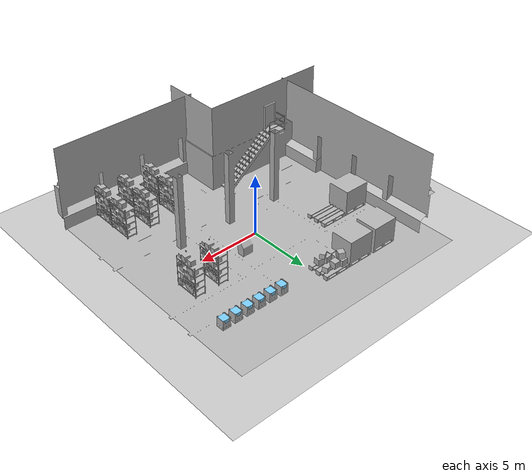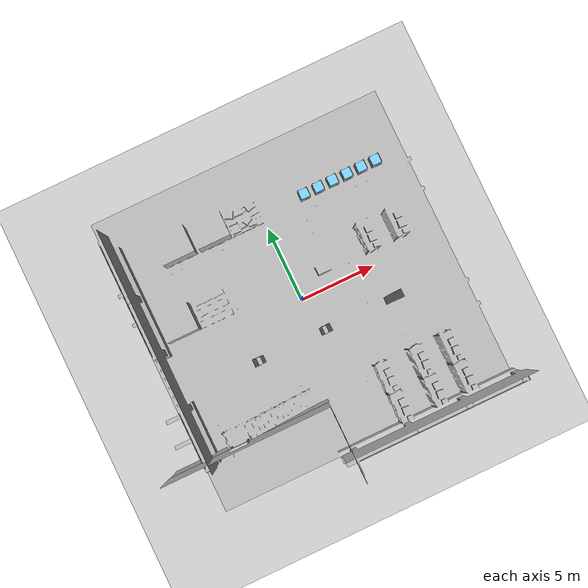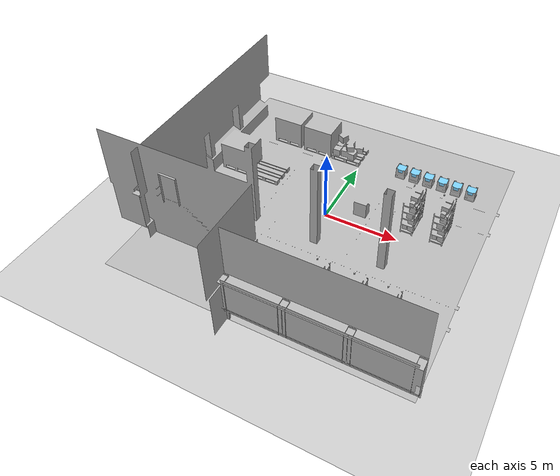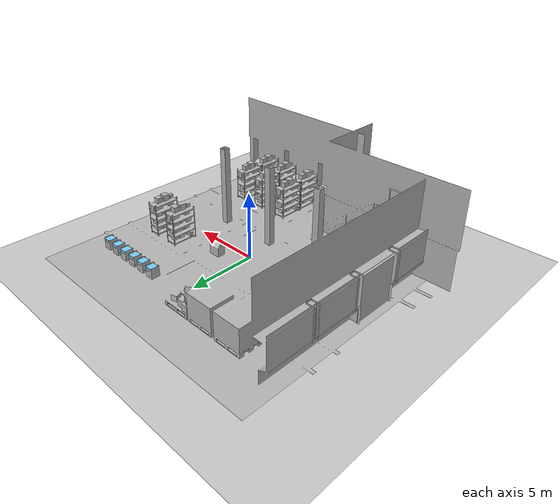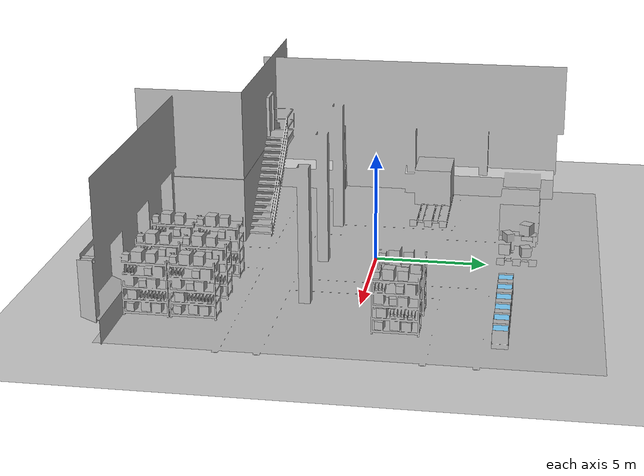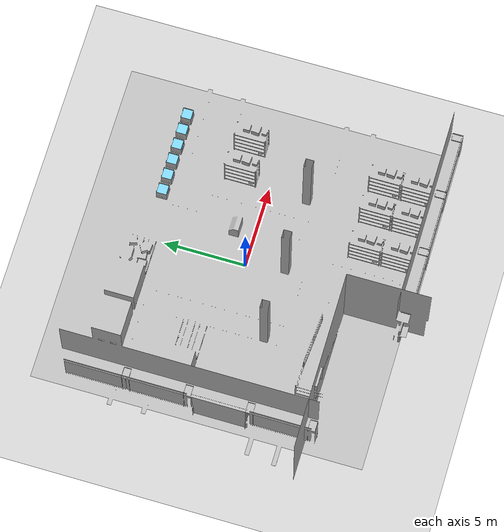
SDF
<sdf version="1.6">
 <world name="default">
  <light name="sun" type="directional">
   <pose>0 0 10 0 -0 0</pose>
   <diffuse>0.8 0.8 0.8 1</diffuse>
   <specular>0.2 0.2 0.2 1</specular>
   <attenuation>
    <range>1000</range>
    <constant>0.9</constant>
    <linear>0.01</linear>
    <quadratic>0.001</quadratic>
   </attenuation>
   <direction>-0.5 0.1 -0.9</direction>
  </light>
  <model name="ground_plane">
   <static>1</static>
   <link name="link">
    <collision name="collision">
     <geometry><plane><normal>0 0 1</normal><size>100 100</size></plane></geometry>
     <surface><friction><ode><mu>100</mu><mu2>50</mu2></ode></friction></surface>
    </collision>
    <visual name="visual">
     <cast_shadows>0</cast_shadows>
     <geometry><plane><normal>0 0 1</normal><size>100 100</size></plane></geometry>
     <material>
      <script><uri>file://media/materials/scripts/gazebo.material</uri><name>Gazebo/Grey</name></script>
     </material>
    </visual>
   </link>
  </model>
  <gravity>0 0 -9.8</gravity>
  <magnetic_field>6e-06 2.3e-05 -4.2e-05</magnetic_field>
  <atmosphere type="adiabatic"/>
  <physics name="default_physics" default="0" type="ode">
   <max_step_size>0.001</max_step_size>
   <real_time_factor>1</real_time_factor>
   <real_time_update_rate>1000</real_time_update_rate>
  </physics>
  <scene><ambient>0.4 0.4 0.4 1</ambient><background>0.7 0.7 0.7 1</background><shadows>1</shadows></scene>
  <audio><device>default</device></audio>
  <spherical_coordinates>
   <surface_model>EARTH_WGS84</surface_model>
   <latitude_deg>0</latitude_deg>
   <longitude_deg>0</longitude_deg>
   <elevation>0</elevation>
   <heading_deg>0</heading_deg>
  </spherical_coordinates>
  <model name="workcell">
   <static>1</static>
   <link name="link">
    <visual name="visual"><geometry><mesh><uri>model://workcell/meshes/mesh.dae</uri></mesh></geometry></visual>
    <collision name="floor">
     <pose>0 0 -0.1 0 -0 0</pose>
     <geometry><box><size>20.1026 20.1026 0.2</size></box></geometry>
     <surface><contact><ode><max_vel>0</max_vel><min_depth>0.001</min_depth></ode></contact></surface>
    </collision>
    <collision name="wall1">
     <pose>4.13686 -10.0212 3.48855 0 -0 0</pose>
     <geometry><box><size>12.0768 0.72902 6.97771</size></box></geometry>
    </collision>
    <collision name="wall2">
     <pose>-6.58151 -8.924 3.48855 0 -0 0</pose>
     <geometry><box><size>10.5921 5.00198 6.97771</size></box></geometry>
    </collision>
    <collision name="wall3">
     <pose>-9.25721 0.6135 3.48855 0 -0 0</pose>
     <geometry><box><size>0.72902 15.2908 6.97771</size></box></geometry>
    </collision>
    <collision name="rack1">
     <pose>7.35056 1.7443 1.41643 0 -0 0</pose>
     <geometry><box><size>0.84444 1.95581 2.83286</size></box></geometry>
    </collision>
    <collision name="rack2">
     <pose>5.36795 1.7443 1.41643 0 -0 0</pose>
     <geometry><box><size>0.84444 1.95581 2.83286</size></box></geometry>
    </collision>
    <collision name="rack3">
     <pose>7.00142 -7.6467 1.41643 0 -0 0</pose>
     <geometry><box><size>0.84444 3.91162 2.83286</size></box></geometry>
    </collision>
    <collision name="rack4">
     <pose>4.97338 -7.6467 1.41643 0 -0 0</pose>
     <geometry><box><size>0.84444 3.91162 2.83286</size></box></geometry>
    </collision>
    <collision name="rack5">
     <pose>2.66949 -7.6467 1.41643 0 -0 0</pose>
     <geometry><box><size>0.84444 3.91162 2.83286</size></box></geometry>
    </collision>
    <collision name="large_pallet1">
     <pose>-3.33609 6.31883 1.04257 0 -0 0</pose>
     <geometry><box><size>2.14726 1.79349 2.08514</size></box></geometry>
    </collision>
    <collision name="large_pallet2">
     <pose>-5.74492 6.31883 1.04257 0 -0 0</pose>
     <geometry><box><size>2.14726 1.79349 2.08514</size></box></geometry>
    </collision>
    <collision name="large_pallet3">
     <pose>-7.55868 1.91644 1.04257 0 -0 0</pose>
     <geometry><box><size>2.14726 1.79432 2.08514</size></box></geometry>
    </collision>
    <collision name="empty_pallet1">
     <pose>-5.29667 1.91644 0.1636 0 -0 0</pose>
     <geometry><box><size>2.14726 1.79349 0.3272</size></box></geometry>
    </collision>
    <collision name="box_pallet1">
     <pose>-1.09806 6.31883 0.61958 0 -0 0</pose>
     <geometry><box><size>2.14726 1.79349 1.23916</size></box></geometry>
    </collision>
    <collision name="pole1">
     <pose>5.02174 -2.39478 3.02208 0 -0 0</pose>
     <geometry><box><size>0.49161 0.49161 6.04415</size></box></geometry>
    </collision>
    <collision name="pole2">
     <pose>0.47071 -2.39478 3.02208 0 -0 0</pose>
     <geometry><box><size>0.49161 0.49161 6.04415</size></box></geometry>
    </collision>
    <collision name="pole3">
     <pose>-3.93786 -2.39478 3.02208 0 -0 0</pose>
     <geometry><box><size>0.49161 0.49161 6.04415</size></box></geometry>
    </collision>
    <collision name="control_panel">
     <pose>2.07015 1.16224 0.561315 0 -0 0</pose>
     <geometry><box><size>0.86733 0.6001 1.12263</size></box></geometry>
    </collision>
   </link>
   <pose>-0.040107 0.052292 0 0 -0 0</pose>
  </model>
  <model name="workcell_bin">
   <static>1</static>
   <link name="link">
    <visual name="visual">
     <geometry><mesh><uri>model://workcell_bin/meshes/bin.dae</uri></mesh></geometry>
    </visual>
    <collision name="center_collision">
     <pose>0 0 0.45 0 -0 0</pose>
     <geometry><box><size>0.6 0.6 0.55</size></box></geometry>
    </collision>
    <visual name="center_visual">
     <pose>0 0 0.45 0 -0 0</pose>
     <geometry><box><size>0.6 0.6 0.55</size></box></geometry>
     <material><ambient>0.486275 0.819608 1 1</ambient><diffuse>0.486275 0.819608 1 1</diffuse></material>
    </visual>
    <collision name="base">
     <pose>0 0 0.100245 0 -0 0</pose>
     <geometry><box><size>0.66836 0.66836 0.20049</size></box></geometry>
    </collision>
    <collision name="left_wall">
     <pose>-0.319 0 0.395445 0 -0 0</pose>
     <geometry><box><size>0.003 0.63803 0.79089</size></box></geometry>
    </collision>
    <collision name="right_wall">
     <pose>0.319 0 0.395445 0 -0 0</pose>
     <geometry><box><size>0.003 0.63803 0.79089</size></box></geometry>
    </collision>
    <collision name="front_left_wall">
     <pose>-0.25331 0.31899 0.395445 0 -0 0</pose>
     <geometry><box><size>0.13437 0.003 0.79089</size></box></geometry>
    </collision>
    <collision name="front_mid_wall">
     <pose>0 0.31899 0.252845 0 -0 0</pose>
     <geometry><box><size>0.37226 0.003 0.50569</size></box></geometry>
    </collision>
    <collision name="front_right_wall">
     <pose>0.25331 0.31899 0.395445 0 -0 0</pose>
     <geometry><box><size>0.13437 0.003 0.79089</size></box></geometry>
    </collision>
    <collision name="back_left_wall">
     <pose>-0.25331 -0.31899 0.395445 0 -0 0</pose>
     <geometry><box><size>0.13437 0.003 0.79089</size></box></geometry>
    </collision>
    <collision name="back_mid_wall">
     <pose>0 -0.31899 0.252845 0 -0 0</pose>
     <geometry><box><size>0.37226 0.003 0.50569</size></box></geometry>
    </collision>
    <collision name="back_right_wall">
     <pose>0.25331 -0.31899 0.395445 0 -0 0</pose>
     <geometry><box><size>0.13437 0.003 0.79089</size></box></geometry>
    </collision>
   </link>
   <pose>3 6 0 0 -0 0</pose>
  </model>
  <model name="workcell_bin_clone">
   <static>1</static>
   <link name="link">
    <visual name="visual">
     <geometry><mesh><uri>model://workcell_bin/meshes/bin.dae</uri></mesh></geometry>
    </visual>
    <collision name="center_collision">
     <pose>0 0 0.45 0 -0 0</pose>
     <geometry><box><size>0.6 0.6 0.55</size></box></geometry>
    </collision>
    <visual name="center_visual">
     <pose>0 0 0.45 0 -0 0</pose>
     <geometry><box><size>0.6 0.6 0.55</size></box></geometry>
     <material><ambient>0.486275 0.819608 1 1</ambient><diffuse>0.486275 0.819608 1 1</diffuse></material>
    </visual>
    <collision name="base">
     <pose>0 0 0.100245 0 -0 0</pose>
     <geometry><box><size>0.66836 0.66836 0.20049</size></box></geometry>
    </collision>
    <collision name="left_wall">
     <pose>-0.319 0 0.395445 0 -0 0</pose>
     <geometry><box><size>0.003 0.63803 0.79089</size></box></geometry>
    </collision>
    <collision name="right_wall">
     <pose>0.319 0 0.395445 0 -0 0</pose>
     <geometry><box><size>0.003 0.63803 0.79089</size></box></geometry>
    </collision>
    <collision name="front_left_wall">
     <pose>-0.25331 0.31899 0.395445 0 -0 0</pose>
     <geometry><box><size>0.13437 0.003 0.79089</size></box></geometry>
    </collision>
    <collision name="front_mid_wall">
     <pose>0 0.31899 0.252845 0 -0 0</pose>
     <geometry><box><size>0.37226 0.003 0.50569</size></box></geometry>
    </collision>
    <collision name="front_right_wall">
     <pose>0.25331 0.31899 0.395445 0 -0 0</pose>
     <geometry><box><size>0.13437 0.003 0.79089</size></box></geometry>
    </collision>
    <collision name="back_left_wall">
     <pose>-0.25331 -0.31899 0.395445 0 -0 0</pose>
     <geometry><box><size>0.13437 0.003 0.79089</size></box></geometry>
    </collision>
    <collision name="back_mid_wall">
     <pose>0 -0.31899 0.252845 0 -0 0</pose>
     <geometry><box><size>0.37226 0.003 0.50569</size></box></geometry>
    </collision>
    <collision name="back_right_wall">
     <pose>0.25331 -0.31899 0.395445 0 -0 0</pose>
     <geometry><box><size>0.13437 0.003 0.79089</size></box></geometry>
    </collision>
   </link>
   <pose>4 6 0 0 -0 0</pose>
  </model>
  <model name="workcell_bin_clone_0">
   <static>1</static>
   <link name="link">
    <visual name="visual">
     <geometry><mesh><uri>model://workcell_bin/meshes/bin.dae</uri></mesh></geometry>
    </visual>
    <collision name="center_collision">
     <pose>0 0 0.45 0 -0 0</pose>
     <geometry><box><size>0.6 0.6 0.55</size></box></geometry>
    </collision>
    <visual name="center_visual">
     <pose>0 0 0.45 0 -0 0</pose>
     <geometry><box><size>0.6 0.6 0.55</size></box></geometry>
     <material><ambient>0.486275 0.819608 1 1</ambient><diffuse>0.486275 0.819608 1 1</diffuse></material>
    </visual>
    <collision name="base">
     <pose>0 0 0.100245 0 -0 0</pose>
     <geometry><box><size>0.66836 0.66836 0.20049</size></box></geometry>
    </collision>
    <collision name="left_wall">
     <pose>-0.319 0 0.395445 0 -0 0</pose>
     <geometry><box><size>0.003 0.63803 0.79089</size></box></geometry>
    </collision>
    <collision name="right_wall">
     <pose>0.319 0 0.395445 0 -0 0</pose>
     <geometry><box><size>0.003 0.63803 0.79089</size></box></geometry>
    </collision>
    <collision name="front_left_wall">
     <pose>-0.25331 0.31899 0.395445 0 -0 0</pose>
     <geometry><box><size>0.13437 0.003 0.79089</size></box></geometry>
    </collision>
    <collision name="front_mid_wall">
     <pose>0 0.31899 0.252845 0 -0 0</pose>
     <geometry><box><size>0.37226 0.003 0.50569</size></box></geometry>
    </collision>
    <collision name="front_right_wall">
     <pose>0.25331 0.31899 0.395445 0 -0 0</pose>
     <geometry><box><size>0.13437 0.003 0.79089</size></box></geometry>
    </collision>
    <collision name="back_left_wall">
     <pose>-0.25331 -0.31899 0.395445 0 -0 0</pose>
     <geometry><box><size>0.13437 0.003 0.79089</size></box></geometry>
    </collision>
    <collision name="back_mid_wall">
     <pose>0 -0.31899 0.252845 0 -0 0</pose>
     <geometry><box><size>0.37226 0.003 0.50569</size></box></geometry>
    </collision>
    <collision name="back_right_wall">
     <pose>0.25331 -0.31899 0.395445 0 -0 0</pose>
     <geometry><box><size>0.13437 0.003 0.79089</size></box></geometry>
    </collision>
   </link>
   <pose>5 6 0 0 -0 0</pose>
  </model>
  <model name="workcell_bin_clone_1">
   <static>1</static>
   <link name="link">
    <visual name="visual">
     <geometry><mesh><uri>model://workcell_bin/meshes/bin.dae</uri></mesh></geometry>
    </visual>
    <collision name="center_collision">
     <pose>0 0 0.45 0 -0 0</pose>
     <geometry><box><size>0.6 0.6 0.55</size></box></geometry>
    </collision>
    <visual name="center_visual">
     <pose>0 0 0.45 0 -0 0</pose>
     <geometry><box><size>0.6 0.6 0.55</size></box></geometry>
     <material><ambient>0.486275 0.819608 1 1</ambient><diffuse>0.486275 0.819608 1 1</diffuse></material>
    </visual>
    <collision name="base">
     <pose>0 0 0.100245 0 -0 0</pose>
     <geometry><box><size>0.66836 0.66836 0.20049</size></box></geometry>
    </collision>
    <collision name="left_wall">
     <pose>-0.319 0 0.395445 0 -0 0</pose>
     <geometry><box><size>0.003 0.63803 0.79089</size></box></geometry>
    </collision>
    <collision name="right_wall">
     <pose>0.319 0 0.395445 0 -0 0</pose>
     <geometry><box><size>0.003 0.63803 0.79089</size></box></geometry>
    </collision>
    <collision name="front_left_wall">
     <pose>-0.25331 0.31899 0.395445 0 -0 0</pose>
     <geometry><box><size>0.13437 0.003 0.79089</size></box></geometry>
    </collision>
    <collision name="front_mid_wall">
     <pose>0 0.31899 0.252845 0 -0 0</pose>
     <geometry><box><size>0.37226 0.003 0.50569</size></box></geometry>
    </collision>
    <collision name="front_right_wall">
     <pose>0.25331 0.31899 0.395445 0 -0 0</pose>
     <geometry><box><size>0.13437 0.003 0.79089</size></box></geometry>
    </collision>
    <collision name="back_left_wall">
     <pose>-0.25331 -0.31899 0.395445 0 -0 0</pose>
     <geometry><box><size>0.13437 0.003 0.79089</size></box></geometry>
    </collision>
    <collision name="back_mid_wall">
     <pose>0 -0.31899 0.252845 0 -0 0</pose>
     <geometry><box><size>0.37226 0.003 0.50569</size></box></geometry>
    </collision>
    <collision name="back_right_wall">
     <pose>0.25331 -0.31899 0.395445 0 -0 0</pose>
     <geometry><box><size>0.13437 0.003 0.79089</size></box></geometry>
    </collision>
   </link>
   <pose>6 6 0 0 -0 0</pose>
  </model>
  <model name="workcell_bin_clone_2">
   <static>1</static>
   <link name="link">
    <visual name="visual">
     <geometry><mesh><uri>model://workcell_bin/meshes/bin.dae</uri></mesh></geometry>
    </visual>
    <collision name="center_collision">
     <pose>0 0 0.45 0 -0 0</pose>
     <geometry><box><size>0.6 0.6 0.55</size></box></geometry>
    </collision>
    <visual name="center_visual">
     <pose>0 0 0.45 0 -0 0</pose>
     <geometry><box><size>0.6 0.6 0.55</size></box></geometry>
     <material><ambient>0.486275 0.819608 1 1</ambient><diffuse>0.486275 0.819608 1 1</diffuse></material>
    </visual>
    <collision name="base">
     <pose>0 0 0.100245 0 -0 0</pose>
     <geometry><box><size>0.66836 0.66836 0.20049</size></box></geometry>
    </collision>
    <collision name="left_wall">
     <pose>-0.319 0 0.395445 0 -0 0</pose>
     <geometry><box><size>0.003 0.63803 0.79089</size></box></geometry>
    </collision>
    <collision name="right_wall">
     <pose>0.319 0 0.395445 0 -0 0</pose>
     <geometry><box><size>0.003 0.63803 0.79089</size></box></geometry>
    </collision>
    <collision name="front_left_wall">
     <pose>-0.25331 0.31899 0.395445 0 -0 0</pose>
     <geometry><box><size>0.13437 0.003 0.79089</size></box></geometry>
    </collision>
    <collision name="front_mid_wall">
     <pose>0 0.31899 0.252845 0 -0 0</pose>
     <geometry><box><size>0.37226 0.003 0.50569</size></box></geometry>
    </collision>
    <collision name="front_right_wall">
     <pose>0.25331 0.31899 0.395445 0 -0 0</pose>
     <geometry><box><size>0.13437 0.003 0.79089</size></box></geometry>
    </collision>
    <collision name="back_left_wall">
     <pose>-0.25331 -0.31899 0.395445 0 -0 0</pose>
     <geometry><box><size>0.13437 0.003 0.79089</size></box></geometry>
    </collision>
    <collision name="back_mid_wall">
     <pose>0 -0.31899 0.252845 0 -0 0</pose>
     <geometry><box><size>0.37226 0.003 0.50569</size></box></geometry>
    </collision>
    <collision name="back_right_wall">
     <pose>0.25331 -0.31899 0.395445 0 -0 0</pose>
     <geometry><box><size>0.13437 0.003 0.79089</size></box></geometry>
    </collision>
   </link>
   <pose>7.0 6 0 0 -0 0</pose>
  </model>
  <model name="workcell_bin_clone_3">
   <static>1</static>
   <link name="link">
    <visual name="visual">
     <geometry><mesh><uri>model://workcell_bin/meshes/bin.dae</uri></mesh></geometry>
    </visual>
    <collision name="center_collision">
     <pose>0 0 0.45 0 -0 0</pose>
     <geometry><box><size>0.6 0.6 0.55</size></box></geometry>
    </collision>
    <visual name="center_visual">
     <pose>0 0 0.45 0 -0 0</pose>
     <geometry><box><size>0.6 0.6 0.55</size></box></geometry>
     <material><ambient>0.486275 0.819608 1 1</ambient><diffuse>0.486275 0.819608 1 1</diffuse></material>
    </visual>
    <collision name="base">
     <pose>0 0 0.100245 0 -0 0</pose>
     <geometry><box><size>0.66836 0.66836 0.20049</size></box></geometry>
    </collision>
    <collision name="left_wall">
     <pose>-0.319 0 0.395445 0 -0 0</pose>
     <geometry><box><size>0.003 0.63803 0.79089</size></box></geometry>
    </collision>
    <collision name="right_wall">
     <pose>0.319 0 0.395445 0 -0 0</pose>
     <geometry><box><size>0.003 0.63803 0.79089</size></box></geometry>
    </collision>
    <collision name="front_left_wall">
     <pose>-0.25331 0.31899 0.395445 0 -0 0</pose>
     <geometry><box><size>0.13437 0.003 0.79089</size></box></geometry>
    </collision>
    <collision name="front_mid_wall">
     <pose>0 0.31899 0.252845 0 -0 0</pose>
     <geometry><box><size>0.37226 0.003 0.50569</size></box></geometry>
    </collision>
    <collision name="front_right_wall">
     <pose>0.25331 0.31899 0.395445 0 -0 0</pose>
     <geometry><box><size>0.13437 0.003 0.79089</size></box></geometry>
    </collision>
    <collision name="back_left_wall">
     <pose>-0.25331 -0.31899 0.395445 0 -0 0</pose>
     <geometry><box><size>0.13437 0.003 0.79089</size></box></geometry>
    </collision>
    <collision name="back_mid_wall">
     <pose>0 -0.31899 0.252845 0 -0 0</pose>
     <geometry><box><size>0.37226 0.003 0.50569</size></box></geometry>
    </collision>
    <collision name="back_right_wall">
     <pose>0.25331 -0.31899 0.395445 0 -0 0</pose>
     <geometry><box><size>0.13437 0.003 0.79089</size></box></geometry>
    </collision>
   </link>
   <pose>8 6 0 0 -0 0</pose>
  </model>
 </world>
</sdf>
